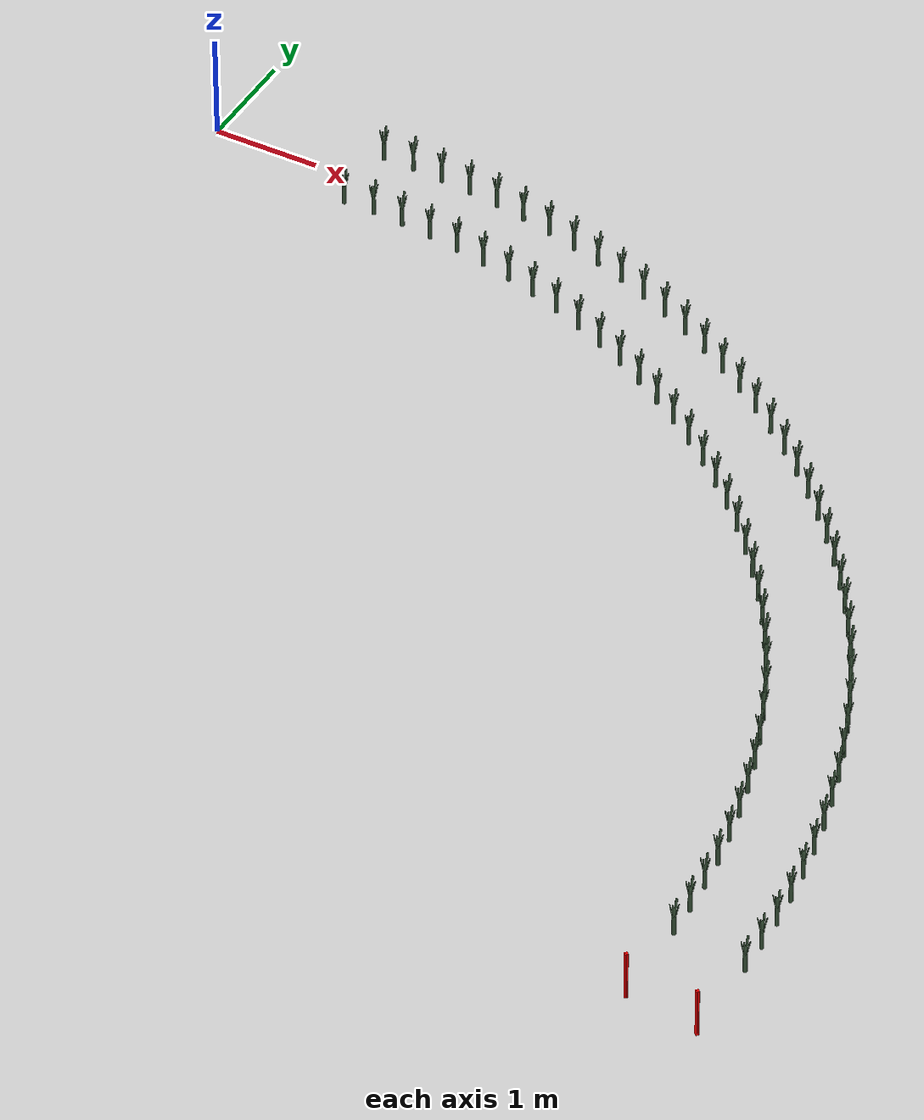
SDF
<sdf version="1.6">
 <world name="default">
  <light name="sun" type="directional">
   <pose>0 0 10 0 -0 0</pose>
   <diffuse>0.5 0.5 0.5 1</diffuse>
   <specular>0.1 0.1 0.1 1</specular>
   <attenuation>
    <range>1000</range>
    <constant>0.9</constant>
    <linear>0.01</linear>
    <quadratic>0.001</quadratic>
   </attenuation>
   <direction>0.9 0.5 -1</direction>
  </light>
  <scene><background>130 200 255 1</background><ambient>130 140 140 1</ambient></scene>
  <include><uri>model://dirt_plane</uri></include>
  <include><uri>model://Leek</uri><pose>1.500000 -0.350000 0.15 0 0 0</pose><static>0</static></include>
  <include><uri>model://Leek</uri><pose>1.799908 -0.356428 0.15 0 0 0</pose><static>0</static></include>
  <include><uri>model://Leek</uri><pose>2.099266 -0.375699 0.15 0 0 0</pose><static>0</static></include>
  <include><uri>model://Leek</uri><pose>2.397522 -0.407777 0.15 0 0 0</pose><static>0</static></include>
  <include><uri>model://Leek</uri><pose>2.694131 -0.452605 0.15 0 0 0</pose><static>0</static></include>
  <include><uri>model://Leek</uri><pose>2.988547 -0.510100 0.15 0 0 0</pose><static>0</static></include>
  <include><uri>model://Leek</uri><pose>3.280229 -0.580156 0.15 0 0 0</pose><static>0</static></include>
  <include><uri>model://Leek</uri><pose>3.568641 -0.662645 0.15 0 0 0</pose><static>0</static></include>
  <include><uri>model://Leek</uri><pose>3.853255 -0.757414 0.15 0 0 0</pose><static>0</static></include>
  <include><uri>model://Leek</uri><pose>4.133547 -0.864290 0.15 0 0 0</pose><static>0</static></include>
  <include><uri>model://Leek</uri><pose>4.409003 -0.983078 0.15 0 0 0</pose><static>0</static></include>
  <include><uri>model://Leek</uri><pose>4.679116 -1.113557 0.15 0 0 0</pose><static>0</static></include>
  <include><uri>model://Leek</uri><pose>4.943392 -1.255490 0.15 0 0 0</pose><static>0</static></include>
  <include><uri>model://Leek</uri><pose>5.201343 -1.408615 0.15 0 0 0</pose><static>0</static></include>
  <include><uri>model://Leek</uri><pose>5.452497 -1.572651 0.15 0 0 0</pose><static>0</static></include>
  <include><uri>model://Leek</uri><pose>5.696393 -1.747297 0.15 0 0 0</pose><static>0</static></include>
  <include><uri>model://Leek</uri><pose>5.932582 -1.932231 0.15 0 0 0</pose><static>0</static></include>
  <include><uri>model://Leek</uri><pose>6.160631 -2.127116 0.15 0 0 0</pose><static>0</static></include>
  <include><uri>model://Leek</uri><pose>6.380121 -2.331592 0.15 0 0 0</pose><static>0</static></include>
  <include><uri>model://Leek</uri><pose>6.590649 -2.545284 0.15 0 0 0</pose><static>0</static></include>
  <include><uri>model://Leek</uri><pose>6.791828 -2.767800 0.15 0 0 0</pose><static>0</static></include>
  <include><uri>model://Leek</uri><pose>6.983288 -2.998730 0.15 0 0 0</pose><static>0</static></include>
  <include><uri>model://Leek</uri><pose>7.164679 -3.237652 0.15 0 0 0</pose><static>0</static></include>
  <include><uri>model://Leek</uri><pose>7.335667 -3.484126 0.15 0 0 0</pose><static>0</static></include>
  <include><uri>model://Leek</uri><pose>7.495939 -3.737699 0.15 0 0 0</pose><static>0</static></include>
  <include><uri>model://Leek</uri><pose>7.645199 -3.997906 0.15 0 0 0</pose><static>0</static></include>
  <include><uri>model://Leek</uri><pose>7.783173 -4.264269 0.15 0 0 0</pose><static>0</static></include>
  <include><uri>model://Leek</uri><pose>7.909609 -4.536299 0.15 0 0 0</pose><static>0</static></include>
  <include><uri>model://Leek</uri><pose>8.024274 -4.813496 0.15 0 0 0</pose><static>0</static></include>
  <include><uri>model://Leek</uri><pose>8.126957 -5.095351 0.15 0 0 0</pose><static>0</static></include>
  <include><uri>model://Leek</uri><pose>8.217470 -5.381347 0.15 0 0 0</pose><static>0</static></include>
  <include><uri>model://Leek</uri><pose>8.295647 -5.670958 0.15 0 0 0</pose><static>0</static></include>
  <include><uri>model://Leek</uri><pose>8.361344 -5.963652 0.15 0 0 0</pose><static>0</static></include>
  <include><uri>model://Leek</uri><pose>8.414440 -6.258893 0.15 0 0 0</pose><static>0</static></include>
  <include><uri>model://Leek</uri><pose>8.454839 -6.556137 0.15 0 0 0</pose><static>0</static></include>
  <include><uri>model://Leek</uri><pose>8.482465 -6.854840 0.15 0 0 0</pose><static>0</static></include>
  <include><uri>model://Leek</uri><pose>8.497268 -7.154451 0.15 0 0 0</pose><static>0</static></include>
  <include><uri>model://Red_stick</uri><pose>8.499221 -7.954422 0.15 0 0 0</pose><static>0</static></include>
  <include><uri>model://Leek</uri><pose>1.500000 0.350000 0.15 0 0 0</pose><static>0</static></include>
  <include><uri>model://Leek</uri><pose>1.799924 0.344157 0.15 0 0 0</pose><static>0</static></include>
  <include><uri>model://Leek</uri><pose>2.099393 0.326635 0.15 0 0 0</pose><static>0</static></include>
  <include><uri>model://Leek</uri><pose>2.397952 0.297462 0.15 0 0 0</pose><static>0</static></include>
  <include><uri>model://Leek</uri><pose>2.695148 0.256683 0.15 0 0 0</pose><static>0</static></include>
  <include><uri>model://Leek</uri><pose>2.990531 0.204358 0.15 0 0 0</pose><static>0</static></include>
  <include><uri>model://Leek</uri><pose>3.283651 0.140567 0.15 0 0 0</pose><static>0</static></include>
  <include><uri>model://Leek</uri><pose>3.574064 0.065407 0.15 0 0 0</pose><static>0</static></include>
  <include><uri>model://Leek</uri><pose>3.861328 -0.021008 0.15 0 0 0</pose><static>0</static></include>
  <include><uri>model://Leek</uri><pose>4.145009 -0.118546 0.15 0 0 0</pose><static>0</static></include>
  <include><uri>model://Leek</uri><pose>4.424676 -0.227060 0.15 0 0 0</pose><static>0</static></include>
  <include><uri>model://Leek</uri><pose>4.699903 -0.346385 0.15 0 0 0</pose><static>0</static></include>
  <include><uri>model://Leek</uri><pose>4.970274 -0.476340 0.15 0 0 0</pose><static>0</static></include>
  <include><uri>model://Leek</uri><pose>5.235378 -0.616728 0.15 0 0 0</pose><static>0</static></include>
  <include><uri>model://Leek</uri><pose>5.494812 -0.767335 0.15 0 0 0</pose><static>0</static></include>
  <include><uri>model://Leek</uri><pose>5.748183 -0.927933 0.15 0 0 0</pose><static>0</static></include>
  <include><uri>model://Leek</uri><pose>5.995106 -1.098278 0.15 0 0 0</pose><static>0</static></include>
  <include><uri>model://Leek</uri><pose>6.235207 -1.278113 0.15 0 0 0</pose><static>0</static></include>
  <include><uri>model://Leek</uri><pose>6.468120 -1.467162 0.15 0 0 0</pose><static>0</static></include>
  <include><uri>model://Leek</uri><pose>6.693494 -1.665141 0.15 0 0 0</pose><static>0</static></include>
  <include><uri>model://Leek</uri><pose>6.910984 -1.871748 0.15 0 0 0</pose><static>0</static></include>
  <include><uri>model://Leek</uri><pose>7.120262 -2.086669 0.15 0 0 0</pose><static>0</static></include>
  <include><uri>model://Leek</uri><pose>7.321010 -2.309579 0.15 0 0 0</pose><static>0</static></include>
  <include><uri>model://Leek</uri><pose>7.512923 -2.540140 0.15 0 0 0</pose><static>0</static></include>
  <include><uri>model://Leek</uri><pose>7.695710 -2.778000 0.15 0 0 0</pose><static>0</static></include>
  <include><uri>model://Leek</uri><pose>7.869093 -3.022800 0.15 0 0 0</pose><static>0</static></include>
  <include><uri>model://Leek</uri><pose>8.032809 -3.274168 0.15 0 0 0</pose><static>0</static></include>
  <include><uri>model://Leek</uri><pose>8.186610 -3.531722 0.15 0 0 0</pose><static>0</static></include>
  <include><uri>model://Leek</uri><pose>8.330262 -3.795071 0.15 0 0 0</pose><static>0</static></include>
  <include><uri>model://Leek</uri><pose>8.463547 -4.063815 0.15 0 0 0</pose><static>0</static></include>
  <include><uri>model://Leek</uri><pose>8.586263 -4.337547 0.15 0 0 0</pose><static>0</static></include>
  <include><uri>model://Leek</uri><pose>8.698224 -4.615852 0.15 0 0 0</pose><static>0</static></include>
  <include><uri>model://Leek</uri><pose>8.799260 -4.898306 0.15 0 0 0</pose><static>0</static></include>
  <include><uri>model://Leek</uri><pose>8.889217 -5.184481 0.15 0 0 0</pose><static>0</static></include>
  <include><uri>model://Leek</uri><pose>8.967959 -5.473944 0.15 0 0 0</pose><static>0</static></include>
  <include><uri>model://Leek</uri><pose>9.035366 -5.766253 0.15 0 0 0</pose><static>0</static></include>
  <include><uri>model://Leek</uri><pose>9.091337 -6.060966 0.15 0 0 0</pose><static>0</static></include>
  <include><uri>model://Leek</uri><pose>9.135785 -6.357636 0.15 0 0 0</pose><static>0</static></include>
  <include><uri>model://Leek</uri><pose>9.168644 -6.655812 0.15 0 0 0</pose><static>0</static></include>
  <include><uri>model://Leek</uri><pose>9.189864 -6.955042 0.15 0 0 0</pose><static>0</static></include>
  <include><uri>model://Leek</uri><pose>9.199412 -7.254871 0.15 0 0 0</pose><static>0</static></include>
  <include><uri>model://Red_stick</uri><pose>9.197275 -8.054844 0.15 0 0 0</pose><static>0</static></include>
 </world>
</sdf>

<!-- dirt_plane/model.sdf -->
<sdf version="1.4">
<model name="dirt_plane">
  <static>true</static>
    <link name="link">
      <collision name="collision">
        <geometry>
          <plane>
            <normal>0 0 1</normal>
            <size>100 100</size>
          </plane>
        </geometry>
        <surface>
          <friction>
            <ode>
              <mu>100</mu>
              <mu2>50</mu2>
            </ode>
          </friction>
        </surface>
      </collision>
      <visual name="visual">
        <cast_shadows>false</cast_shadows>
        <geometry>
          <plane>
            <normal>0 0 1</normal>
            <size>100 100</size>
          </plane>
        </geometry>
        <material>
          <script>
            <uri>model://ground_plane/materials/scripts/my_ground_plane.material</uri>
            <uri>model://ground_plane/materials/textures</uri>
            <name>my_ground_plane/Dirt</name>
          </script>
        </material>
      </visual>
    </link>
  </model>
</sdf>

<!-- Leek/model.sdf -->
<sdf version='1.6'>
  <model name='Leek'>
    <link name='link'>
      <pose frame=''>0 0 0 0 -0 0</pose>
      <inertial>
        <mass>1</mass>
        <inertia>
          <ixx>0.145833</ixx>
          <ixy>0</ixy>
          <ixz>0</ixz>
          <iyy>0.145833</iyy>
          <iyz>0</iyz>
          <izz>0.125</izz>
        </inertia>
        <pose frame=''>0 0 0 0 -0 0</pose>
      </inertial>
      <self_collide>0</self_collide>
      <kinematic>0</kinematic>
      <gravity>1</gravity>
      <visual name='visual'>
        <geometry>
          <mesh>
            <uri>model://Leek/Poireau.dae</uri>
            <scale>1 1 1</scale>
          </mesh>
        </geometry>
        <material>
          <script>
            <name>Gazebo/Grey</name>
            <uri>file://media/materials/scripts/gazebo.material</uri>
          </script>
          <ambient>0.3 0.7 0.4 0</ambient>
          <diffuse>0.2 0.3 0.2 0</diffuse>
          <specular>0 0 0 1</specular>
          <emissive>0 0 0 1</emissive>
          <shader type='vertex'>
            <normal_map>__default__</normal_map>
          </shader>
        </material>
        <pose frame=''>0 0 -0.08 0 -0 0</pose>
        <cast_shadows>1</cast_shadows>
        <transparency>0</transparency>
      </visual>
      <collision name='collision'>
        <laser_retro>0</laser_retro>
        <max_contacts>10</max_contacts>
        <pose frame=''>0 0 0 0 -0 0</pose>
        <geometry>
          <cylinder>
            <radius>0.02</radius>
            <length>0.25</length>
          </cylinder>
        </geometry>
        <surface>
          <friction>
            <ode>
              <mu>1</mu>
              <mu2>1</mu2>
              <fdir1>0 0 0</fdir1>
              <slip1>0</slip1>
              <slip2>0</slip2>
            </ode>
            <torsional>
              <coefficient>1</coefficient>
              <patch_radius>0</patch_radius>
              <surface_radius>0</surface_radius>
              <use_patch_radius>1</use_patch_radius>
              <ode>
                <slip>0</slip>
              </ode>
            </torsional>
          </friction>
          <bounce>
            <restitution_coefficient>0</restitution_coefficient>
            <threshold>1e+06</threshold>
          </bounce>
          <contact>
            <collide_without_contact>0</collide_without_contact>
            <collide_without_contact_bitmask>1</collide_without_contact_bitmask>
            <collide_bitmask>1</collide_bitmask>
            <ode>
              <soft_cfm>0</soft_cfm>
              <soft_erp>0.2</soft_erp>
              <kp>1e+13</kp>
              <kd>1</kd>
              <max_vel>0.01</max_vel>
              <min_depth>0</min_depth>
            </ode>
            <bullet>
              <split_impulse>1</split_impulse>
              <split_impulse_penetration_threshold>-0.01</split_impulse_penetration_threshold>
              <soft_cfm>0</soft_cfm>
              <soft_erp>0.2</soft_erp>
              <kp>1e+13</kp>
              <kd>1</kd>
            </bullet>
          </contact>
        </surface>
      </collision>
    </link>
    <static>0</static>
    <allow_auto_disable>1</allow_auto_disable>
  </model>
</sdf>

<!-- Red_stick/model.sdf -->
<sdf version='1.6'>
  <model name='Red_stick'>
    <link name='link'>
      <pose frame=''>0 0 0 0 -0 0</pose>
      <inertial>
        <mass>1</mass>
        <inertia>
          <ixx>0.145833</ixx>
          <ixy>0</ixy>
          <ixz>0</ixz>
          <iyy>0.145833</iyy>
          <iyz>0</iyz>
          <izz>0.125</izz>
        </inertia>
        <pose frame=''>0 0 0 0 -0 0</pose>
      </inertial>
      <self_collide>0</self_collide>
      <kinematic>0</kinematic>
      <gravity>1</gravity>
      <visual name='visual'>
        <geometry>
          <mesh>
            <uri>model://Red_stick/PiquetRouge.dae</uri>
            <scale>1.8 1.8 1.8</scale>
          </mesh>
        </geometry>
        <material>
          <script>
            <name>Gazebo/Grey</name>
            <uri>file://media/materials/scripts/gazebo.material</uri>
          </script>
          <ambient>1 0.0 0.0 1</ambient>
          <diffuse>1 0.0 0.0 1</diffuse>
          <specular>0.01 0.01 0.01 1</specular>
          <emissive>0 0 0 1</emissive>
          <shader type='vertex'>
            <normal_map>__default__</normal_map>
          </shader>
        </material>
        <pose frame=''>0 0 -0.08 0 -0 0</pose>
        <cast_shadows>1</cast_shadows>
        <transparency>0</transparency>
      </visual>
      <collision name='collision'>
        <laser_retro>0</laser_retro>
        <max_contacts>10</max_contacts>
        <pose frame=''>0 0 0 0 -0 0</pose>
        <geometry>
          <cylinder>
            <radius>0.01108</radius>
            <length>0.278243</length>
          </cylinder>
        </geometry>
        <surface>
          <friction>
            <ode>
              <mu>1</mu>
              <mu2>1</mu2>
              <fdir1>0 0 0</fdir1>
              <slip1>0</slip1>
              <slip2>0</slip2>
            </ode>
            <torsional>
              <coefficient>1</coefficient>
              <patch_radius>0</patch_radius>
              <surface_radius>0</surface_radius>
              <use_patch_radius>1</use_patch_radius>
              <ode>
                <slip>0</slip>
              </ode>
            </torsional>
          </friction>
          <bounce>
            <restitution_coefficient>0</restitution_coefficient>
            <threshold>1e+06</threshold>
          </bounce>
          <contact>
            <collide_without_contact>0</collide_without_contact>
            <collide_without_contact_bitmask>1</collide_without_contact_bitmask>
            <collide_bitmask>1</collide_bitmask>
            <ode>
              <soft_cfm>0</soft_cfm>
              <soft_erp>0.2</soft_erp>
              <kp>1e+13</kp>
              <kd>1</kd>
              <max_vel>0.01</max_vel>
              <min_depth>0</min_depth>
            </ode>
            <bullet>
              <split_impulse>1</split_impulse>
              <split_impulse_penetration_threshold>-0.01</split_impulse_penetration_threshold>
              <soft_cfm>0</soft_cfm>
              <soft_erp>0.2</soft_erp>
              <kp>1e+13</kp>
              <kd>1</kd>
            </bullet>
          </contact>
        </surface>
      </collision>
    </link>
    <static>0</static>
    <allow_auto_disable>1</allow_auto_disable>
  </model>
</sdf>
